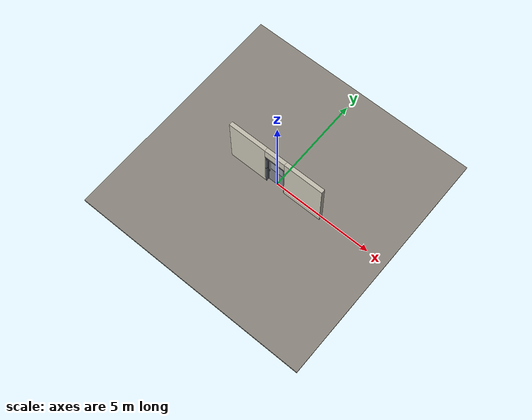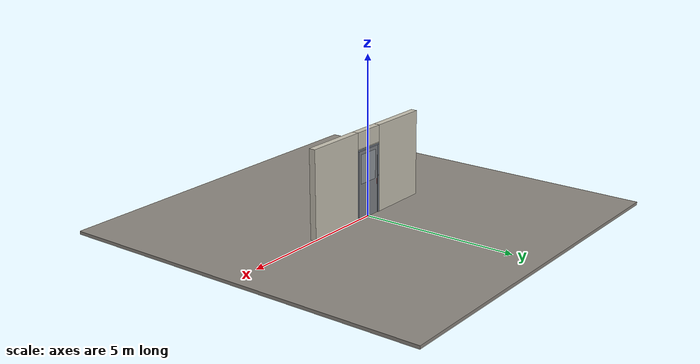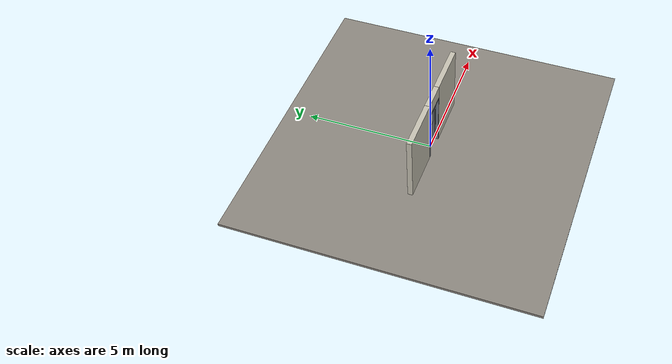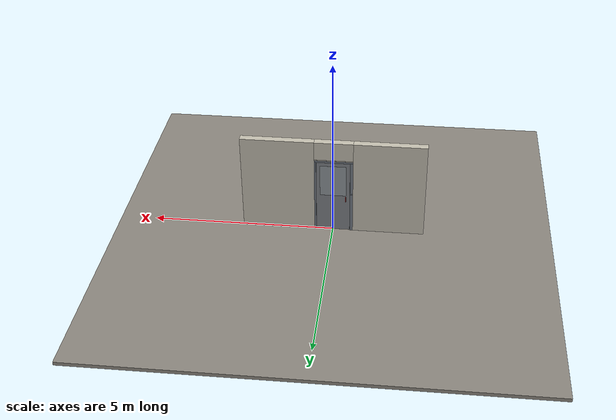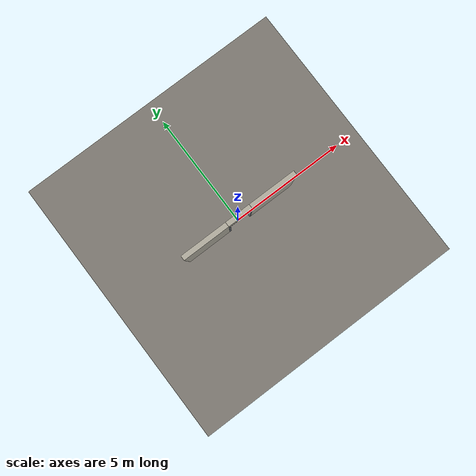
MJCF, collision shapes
<?xml version="1.0" ?>
<mujoco model="db0102_automatic_swing_minimal">
  <compiler angle="radian" meshdir="../../hardware" texturedir="../../textures" autolimits="true" inertiafromgeom="false"/>
  <option timestep="0.002" integrator="implicitfast" cone="elliptic" impratio="10" noslip_iterations="3">
    <flag multiccd="enable"/>
  </option>
  <size memory="16M"/>
  <default>
    <geom condim="4" solref="0.005 1" solimp="0.95 0.99 0.001"/>
    <joint solreflimit="0.005 1" solimplimit="0.95 0.99 0.001"/>
    <tendon solreflimit="0.005 1"/>
    <equality solref="0.002 1"/>
  </default>
  <visual>
    <headlight ambient="0.4 0.4 0.4" diffuse="0.7 0.7 0.7" specular="0.2 0.2 0.2"/>
    <quality shadowsize="4096"/>
    <map znear="0.01" zfar="60"/>
  </visual>
  <asset>
    <mesh name="pull_1e5d69a91a" file="pull_1e5d69a91a.obj"/>
    <material name="mat_floor" rgba="0.55 0.53 0.5 1" specular="0.2" shininess="0.15" reflectance="0"/>
    <material name="mat_wall" rgba="0.78 0.76 0.7 1" specular="0.2" shininess="0.1" reflectance="0"/>
    <material name="mat_leaf" rgba="0.5 0.51 0.53 1" specular="0.23" shininess="0.42" reflectance="0.02"/>
    <material name="mat_glass" rgba="0.85 0.92 0.95 0.25" specular="0.2" shininess="0.95" reflectance="0.1"/>
    <material name="mat_hinge" rgba="0.65 0.66 0.68 1" specular="0.74" shininess="0.5" reflectance="0.36"/>
    <material name="mat_op_stainless" rgba="0.75 0.76 0.77 1" specular="0.8" shininess="0.65" reflectance="0.4"/>
    <material name="mat_deadbolt" rgba="0.85 0.66 0.3 1" specular="0.8" shininess="0.75" reflectance="0.4"/>
    <material name="mat_frame" rgba="0.45 0.48 0.52 1" specular="0.32" shininess="0.6" reflectance="0.08"/>
    <material name="mat_seal" rgba="0.1 0.1 0.1 1" specular="0.2" shininess="0.1" reflectance="0"/>
    <material name="mat_closer" rgba="0.22 0.17 0.13 1" specular="0.8" shininess="0.6" reflectance="0.4"/>
    <material name="mat_bumper" rgba="0.92 0.92 0.9 1" specular="0.2" shininess="0.6" reflectance="0"/>
    <material name="mat_wallreader" rgba="0.05 0.05 0.05 1" specular="0.38" shininess="0.3" reflectance="0.12"/>
    <material name="mat_bumper_stop" rgba="0.08 0.08 0.08 1" specular="0.2" shininess="0.1" reflectance="0"/>
    <material name="mat_stop_base" rgba="0.9 0.9 0.92 1" specular="0.8" shininess="0.9" reflectance="0.4"/>
    <texture name="skybox" type="skybox" builtin="gradient" rgb1="0.6 0.7 0.85" rgb2="0.9 0.92 0.95" width="256" height="256"/>
  </asset>
  <worldbody>
    <light name="sun" pos="1.5 -2.5 4" dir="-0.3 0.5 -0.8" directional="true" diffuse="0.8 0.8 0.8" specular="0.3 0.3 0.3" castshadow="true"/>
    <light name="fill" pos="-1.5 2.5 3" dir="0.3 -0.5 -0.7" directional="true" diffuse="0.35 0.35 0.4" castshadow="false"/>
    <camera name="robot_view" pos="0 -2.708813 1.812087" xyaxes="1 0 0 0 0.26963 0.962964" fovy="52"/>
    <camera name="far_view" pos="0 2.566812 1.812087" xyaxes="-1 0 0 0 -0.26963 0.962964" fovy="52"/>
    <camera name="iso" pos="-2.004737 -2.286763 2.234138" xyaxes="0.741536 -0.670913 0 0.242917 0.268487 0.932151" fovy="46"/>
    <camera name="detail_handle" pos="-0.1715 -0.882 1.32" xyaxes="0.97561 0.219512 0 -0.070934 0.315262 0.94635" fovy="38"/>
    <geom name="floor" type="box" size="6 6 0.05" pos="0 0 -0.05" material="mat_floor" group="0" contype="1" conaffinity="1" friction="0.8 0.005 0.0001" density="2400"/>
    <geom name="wall_left" type="box" size="0.97975 0.1 1.3735" pos="-1.52025 -0.071 1.3735" material="mat_wall" group="0" contype="1" conaffinity="1" friction="0.6 0.005 0.0001" density="800"/>
    <geom name="wall_right" type="box" size="0.99475 0.1 1.3735" pos="1.50525 -0.071 1.3735" material="mat_wall" group="0" contype="1" conaffinity="1" friction="0.6 0.005 0.0001" density="800"/>
    <geom name="wall_header" type="box" size="0.5255 0.1 0.26" pos="-0.015 -0.071 2.487" material="mat_wall" group="0" contype="1" conaffinity="1" friction="0.6 0.005 0.0001" density="800"/>
    <geom name="jamb_hinge" type="box" size="0.025 0.1 1.0735" pos="0.4855 -0.071 1.0735" material="mat_frame" group="0" contype="1" conaffinity="1" friction="0.6 0.005 0.0001" density="300"/>
    <geom name="strike_1180_wall_n" type="box" size="0.04 0.08075 0.0155" pos="-0.5005 -0.09025 1.18" material="mat_frame" group="0" contype="1" conaffinity="1" friction="0.6 0.005 0.0001" density="300"/>
    <geom name="strike_1180_wall_p" type="box" size="0.04 0.00975 0.0155" pos="-0.5005 0.01925 1.18" material="mat_frame" group="0" contype="1" conaffinity="1" friction="0.6 0.005 0.0001" density="300"/>
    <geom name="strike_1180_back" type="box" size="0.0253 0.0095 0.0155" pos="-0.5152 0 1.18" material="mat_frame" group="0" contype="1" conaffinity="1" friction="0.6 0.005 0.0001" density="300"/>
    <geom name="jamb_strike_0" type="box" size="0.04 0.1 0.58225" pos="-0.5005 -0.071 0.58225" material="mat_frame" group="0" contype="1" conaffinity="1" friction="0.6 0.005 0.0001" density="300"/>
    <geom name="jamb_strike_1" type="box" size="0.04 0.1 0.47575" pos="-0.5005 -0.071 1.67125" material="mat_frame" group="0" contype="1" conaffinity="1" friction="0.6 0.005 0.0001" density="300"/>
    <geom name="jamb_head" type="box" size="0.5255 0.1 0.025" pos="-0.015 -0.071 2.172" material="mat_frame" group="0" contype="1" conaffinity="1" friction="0.6 0.005 0.0001" density="300"/>
    <geom name="head_stud" type="box" size="0.5255 0.1 0.015" pos="-0.015 -0.071 2.212" material="mat_wall" group="0" contype="1" conaffinity="1" friction="0.6 0.005 0.0001" density="500"/>
    <geom name="stop_hinge" type="box" size="0.0055 0.016 1.0735" pos="0.455 -0.0385 1.0735" material="mat_frame" group="0" contype="1" conaffinity="1" friction="0.6 0.005 0.0001" density="300"/>
    <geom name="stop_strike" type="box" size="0.0055 0.016 1.0735" pos="-0.455 -0.0385 1.0735" material="mat_frame" group="0" contype="1" conaffinity="1" friction="0.6 0.005 0.0001" density="300"/>
    <geom name="stop_head" type="box" size="0.4605 0.016 0.0055" pos="0 -0.0385 2.1415" material="mat_frame" group="0" contype="1" conaffinity="1" friction="0.6 0.005 0.0001" density="300"/>
    <site name="approach_point" pos="0 -1.5 0" quat="1 0 0 0" size="0.05" rgba="0.2 0.9 0.2 0.5" group="4"/>
    <site name="goal_point" pos="0 1.5 0" quat="1 0 0 0" size="0.05" rgba="0.2 0.9 0.2 0.5" group="4"/>
    <site name="door_plane_center" pos="0 0 1.0735" quat="1 0 0 0" size="0.02" rgba="0.2 0.9 0.2 0.5" group="4"/>
    <body name="leaf" pos="0.4605 0 0">
      <inertial pos="-0.472513 0 1.075312" mass="36.918787" quat="-0.499625 -0.499625 -0.500375 0.500375" diaginertia="2.647571891 13.528846131 16.150153881"/>
      <joint name="leaf_hinge" type="hinge" axis="0 0 -1" pos="-0.003 0.029 0" limited="true" range="0 1.570796" solreflimit="0.02 1" damping="15.268966" frictionloss="1.979641" stiffness="12.827888" springref="-1.543512" armature="0.02"/>
      <geom name="leaf_slab" type="box" size="0.457 0.022 1.067" pos="-0.46 0 1.076" material="mat_leaf" group="0" contype="1" conaffinity="1" friction="0.4 0.005 0.0001" density="1"/>
      <geom name="leaf_glass_0" type="box" size="0.35646 0.0228 0.45881" pos="-0.46 0 1.57749" material="mat_glass" group="1" contype="0" conaffinity="0" density="1"/>
      <geom name="leaf_pull_n" type="mesh" mesh="pull_1e5d69a91a" pos="-0.812 -0.022 1.04" quat="0 0 -0.707107 0.707107" material="mat_op_stainless" group="1" contype="0" conaffinity="0" density="3000"/>
      <geom name="leaf_pull_col_n" type="capsule" size="0.0095 0.08" pos="-0.812 -0.082 1.04" material="mat_op_stainless" group="3" contype="1" conaffinity="1" rgba="0.8 0.3 0.3 0.25" friction="0.7 0.01 0.0001" density="3000"/>
      <geom name="leaf_pull_p" type="mesh" mesh="pull_1e5d69a91a" pos="-0.812 0.022 1.04" quat="0 0 0.707107 0.707107" material="mat_op_stainless" group="1" contype="0" conaffinity="0" density="3000"/>
      <geom name="leaf_pull_col_p" type="capsule" size="0.0095 0.08" pos="-0.812 0.082 1.04" material="mat_op_stainless" group="3" contype="1" conaffinity="1" rgba="0.8 0.3 0.3 0.25" friction="0.7 0.01 0.0001" density="3000"/>
      <site name="leaf_pull_grip_n" pos="-0.812 -0.082 1.04" quat="1 0 0 0" size="0.012" rgba="0.2 0.9 0.2 0.5" group="4"/>
      <site name="leaf_pull_grip_p" pos="-0.812 0.082 1.04" quat="1 0 0 0" size="0.012" rgba="0.2 0.9 0.2 0.5" group="4"/>
      <site name="leaf_edge_mid" pos="-0.917 0 1.067" quat="1 0 0 0" size="0.02" rgba="0.2 0.9 0.2 0.5" group="4"/>
    </body>
  </worldbody>
  <actuator>
    <position name="swing_operator" joint="leaf_hinge" kp="150" kv="40" forcerange="-60 60" ctrlrange="0 1.6"/>
  </actuator>
  <sensor>
    <jointpos name="leaf_hinge_pos" joint="leaf_hinge"/>
    <jointvel name="leaf_hinge_vel" joint="leaf_hinge"/>
  </sensor>
</mujoco>
